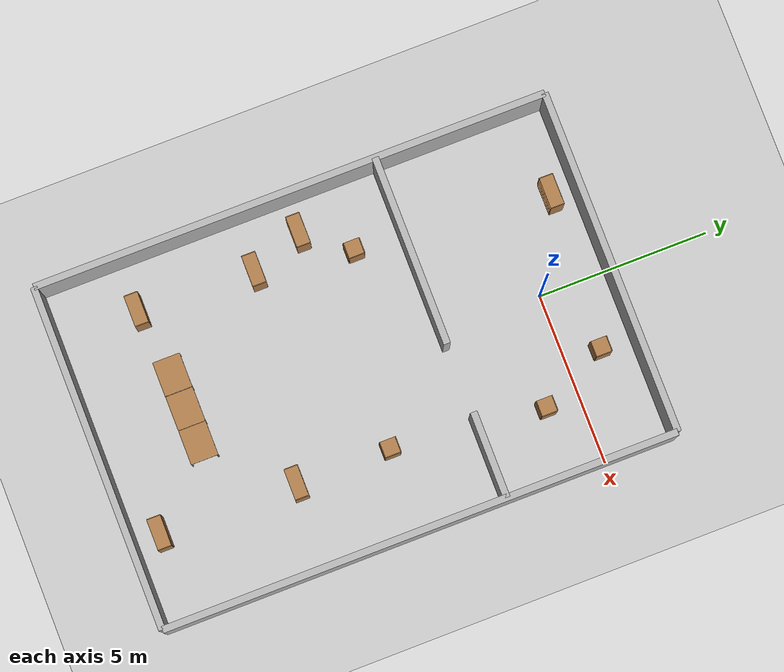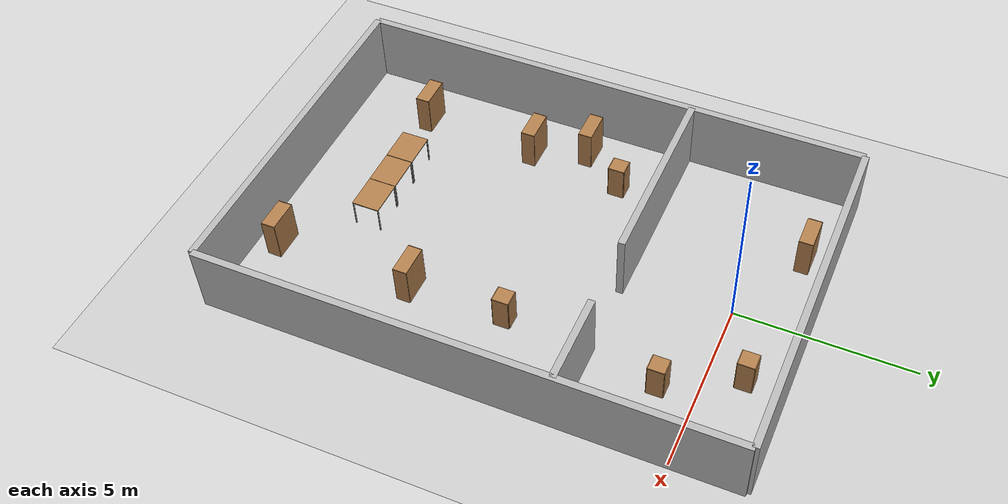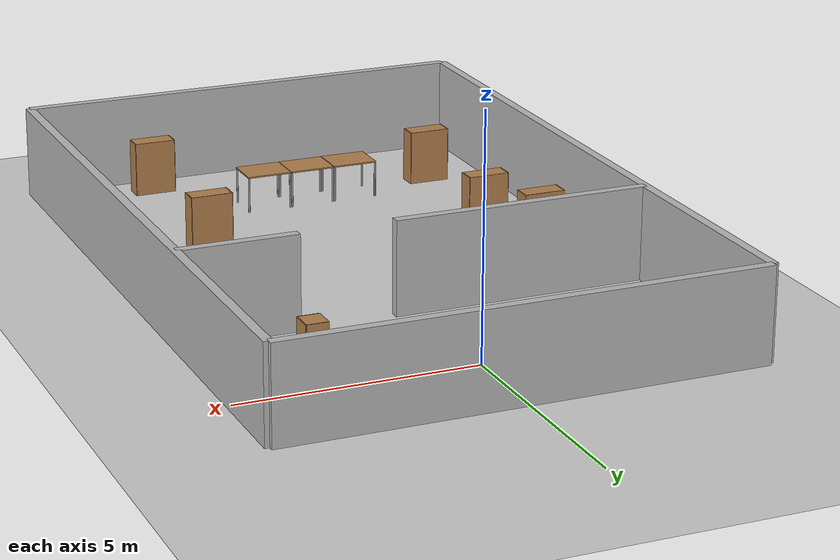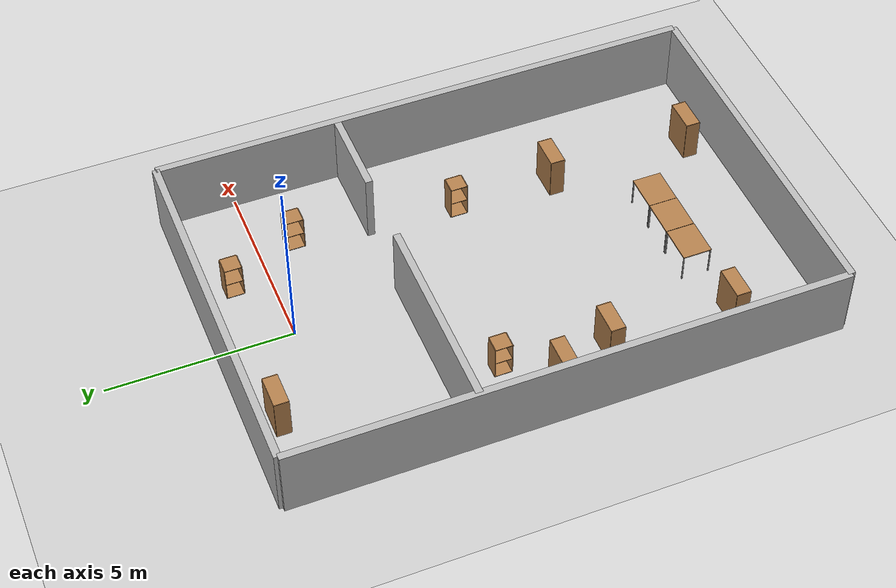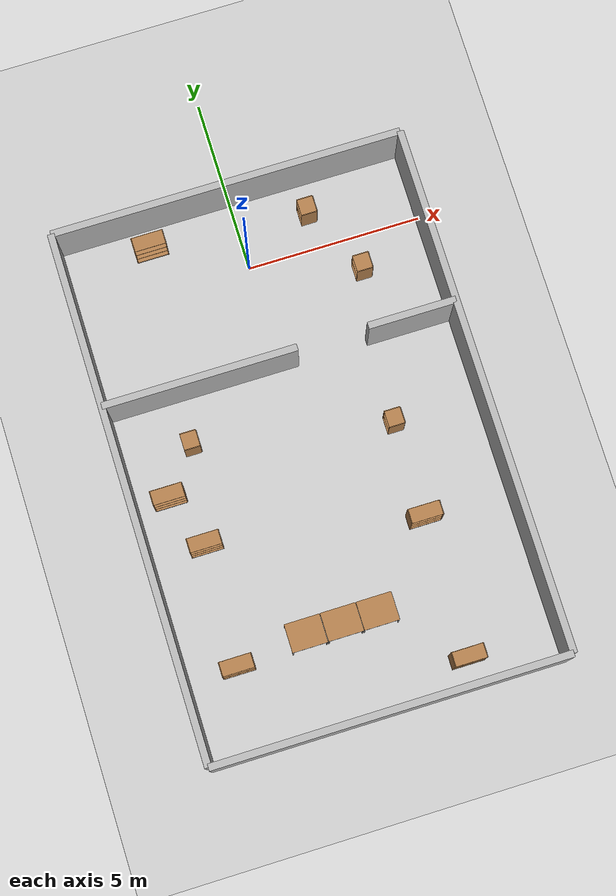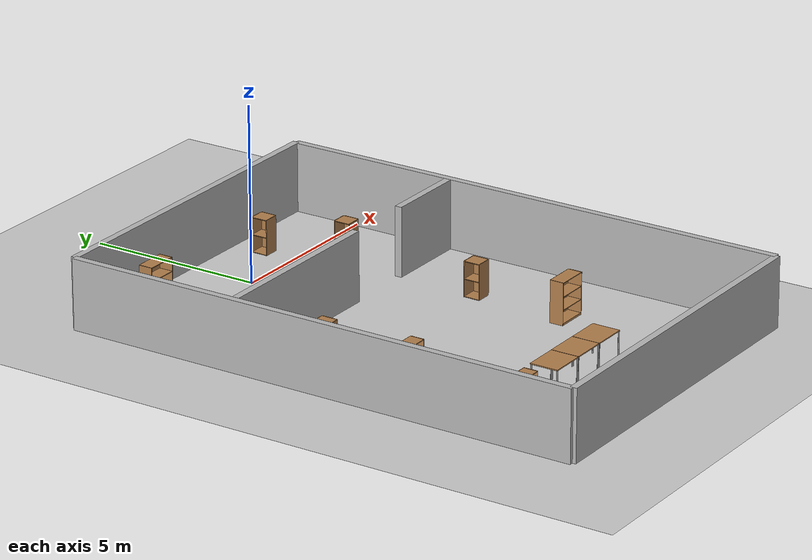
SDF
<sdf version="1.6">
 <world name="default">
  <physics name="default_physics" default="0" type="ode">
   <ode>
    <solver>
     <type>quick</type>
     <iters>20</iters>
     <sor>1</sor>
     <use_dynamic_moi_rescaling>0</use_dynamic_moi_rescaling>
    </solver>
    <constraints>
     <cfm>0</cfm>
     <erp>0.2</erp>
     <contact_max_correcting_vel>100</contact_max_correcting_vel>
     <contact_surface_layer>0</contact_surface_layer>
    </constraints>
   </ode>
   <real_time_update_rate>1000</real_time_update_rate>
   <max_step_size>0.001</max_step_size>
   <real_time_factor>1</real_time_factor>
   <max_contacts>20</max_contacts>
  </physics>
  <light name="sun" type="directional">
   <pose>0 0 10 0 -0 0</pose>
   <diffuse>0.8 0.8 0.8 1</diffuse>
   <specular>0.2 0.2 0.2 1</specular>
   <attenuation>
    <range>1000</range>
    <constant>0.9</constant>
    <linear>0.01</linear>
    <quadratic>0.001</quadratic>
   </attenuation>
   <direction>0.5 0.1 -0.9</direction>
  </light>
  <model name="ground_plane">
   <static>1</static>
   <link name="link">
    <collision name="collision">
     <geometry><plane><normal>0 0 1</normal><size>100 100</size></plane></geometry>
     <surface><friction><ode><mu>100</mu><mu2>50</mu2></ode></friction></surface>
    </collision>
    <visual name="visual">
     <cast_shadows>0</cast_shadows>
     <geometry><plane><normal>0 0 1</normal><size>100 100</size></plane></geometry>
     <material>
      <script><uri>file://media/materials/scripts/gazebo.material</uri><name>Gazebo/Grey</name></script>
     </material>
    </visual>
    <velocity_decay><linear>0</linear><angular>0</angular></velocity_decay>
   </link>
  </model>
  <model name="wall_1_model">
   <pose>0 -13 1 0 -0 0</pose>
   <static>1</static>
   <link name="wall_1_body">
    <inertial>
     <mass>1</mass>
     <inertia><ixx>1</ixx><ixy>0</ixy><ixz>0</ixz><iyy>1</iyy><iyz>0</iyz><izz>1</izz></inertia>
    </inertial>
    <collision name="collision"><geometry><box><size>10 0.2 2</size></box></geometry></collision>
    <visual name="visual"><geometry><box><size>10 0.2 2</size></box></geometry></visual>
    <velocity_decay><linear>0</linear><angular>0</angular></velocity_decay>
   </link>
  </model>
  <model name="wall_2_model">
   <pose>0 2 1 0 -0 0</pose>
   <static>1</static>
   <link name="wall_2_body">
    <inertial>
     <mass>1</mass>
     <inertia><ixx>1</ixx><ixy>0</ixy><ixz>0</ixz><iyy>1</iyy><iyz>0</iyz><izz>1</izz></inertia>
    </inertial>
    <collision name="collision"><geometry><box><size>10 0.2 2</size></box></geometry></collision>
    <visual name="visual"><geometry><box><size>10 0.2 2</size></box></geometry></visual>
    <velocity_decay><linear>0</linear><angular>0</angular></velocity_decay>
   </link>
  </model>
  <model name="wall_3_model">
   <pose>-5 -5.5 1 0 -0 0</pose>
   <static>1</static>
   <link name="wall_3_body">
    <inertial>
     <mass>1</mass>
     <inertia><ixx>1</ixx><ixy>0</ixy><ixz>0</ixz><iyy>1</iyy><iyz>0</iyz><izz>1</izz></inertia>
    </inertial>
    <collision name="collision"><geometry><box><size>0.2 15 2</size></box></geometry></collision>
    <visual name="visual"><geometry><box><size>0.2 15 2</size></box></geometry></visual>
    <velocity_decay><linear>0</linear><angular>0</angular></velocity_decay>
   </link>
  </model>
  <model name="wall_4_model">
   <pose>5 -5.5 1 0 -0 0</pose>
   <static>1</static>
   <link name="wall_4_body">
    <inertial>
     <mass>1</mass>
     <inertia><ixx>1</ixx><ixy>0</ixy><ixz>0</ixz><iyy>1</iyy><iyz>0</iyz><izz>1</izz></inertia>
    </inertial>
    <collision name="collision"><geometry><box><size>0.2 15 2</size></box></geometry></collision>
    <visual name="visual"><geometry><box><size>0.2 15 2</size></box></geometry></visual>
    <velocity_decay><linear>0</linear><angular>0</angular></velocity_decay>
   </link>
  </model>
  <model name="wall_5_model">
   <pose>-2.25 -3 1 0 -0 0</pose>
   <static>1</static>
   <link name="wall_5_body">
    <inertial>
     <mass>1</mass>
     <inertia><ixx>1</ixx><ixy>0</ixy><ixz>0</ixz><iyy>1</iyy><iyz>0</iyz><izz>1</izz></inertia>
    </inertial>
    <collision name="collision"><geometry><box><size>5.5 0.2 2</size></box></geometry></collision>
    <visual name="visual"><geometry><box><size>5.5 0.2 2</size></box></geometry></visual>
    <velocity_decay><linear>0</linear><angular>0</angular></velocity_decay>
   </link>
  </model>
  <model name="wall_6_model">
   <pose>3.75 -3 1 0 -0 0</pose>
   <static>1</static>
   <link name="wall_6_body">
    <inertial>
     <mass>1</mass>
     <inertia><ixx>1</ixx><ixy>0</ixy><ixz>0</ixz><iyy>1</iyy><iyz>0</iyz><izz>1</izz></inertia>
    </inertial>
    <collision name="collision"><geometry><box><size>2.5 0.2 2</size></box></geometry></collision>
    <visual name="visual"><geometry><box><size>2.5 0.2 2</size></box></geometry></visual>
    <velocity_decay><linear>0</linear><angular>0</angular></velocity_decay>
   </link>
  </model>
  <scene><ambient>0.2 0.2 0.2 1</ambient><background>0.7 0.7 0.7 1</background><shadows>1</shadows></scene>
  <model name="cabinet">
   <static>0</static>
   <link name="cabinet_bottom_plate">
    <inertial>
     <pose>0 0 -1 0 -0 0</pose>
     <inertia><ixx>2.05</ixx><ixy>0</ixy><ixz>0</ixz><iyy>2.05</iyy><iyz>0</iyz><izz>2.05</izz></inertia>
     <mass>25</mass>
    </inertial>
    <collision name="cabinet_bottom_plate_geom">
     <pose>0 0 0.01 0 -0 0</pose>
     <geometry><box><size>0.45 0.45 0.02</size></box></geometry>
    </collision>
    <visual name="cabinet_bottom_plate_geom_visual">
     <pose>0 0 0.01 0 -0 0</pose>
     <geometry><box><size>0.45 0.45 0.02</size></box></geometry>
     <material>
      <script><uri>file://media/materials/scripts/gazebo.material</uri><name>Gazebo/Wood</name></script>
     </material>
    </visual>
    <collision name="cabinet_bottom_plate_geom_cabinet_back_plate">
     <pose>0.235 0 0.51 0 -0 0</pose>
     <geometry><box><size>0.02 0.45 1.02</size></box></geometry>
    </collision>
    <visual name="cabinet_bottom_plate_geom_cabinet_back_plate_visual">
     <pose>0.235 0 0.51 0 -0 0</pose>
     <geometry><box><size>0.02 0.45 1.02</size></box></geometry>
     <material>
      <script><uri>file://media/materials/scripts/gazebo.material</uri><name>Gazebo/Wood</name></script>
     </material>
    </visual>
    <collision name="cabinet_bottom_plate_geom_cabinet_left_plate">
     <pose>0 0.235 0.51 0 -0 0</pose>
     <geometry><box><size>0.45 0.02 1.02</size></box></geometry>
    </collision>
    <visual name="cabinet_bottom_plate_geom_cabinet_left_plate_visual">
     <pose>0 0.235 0.51 0 -0 0</pose>
     <geometry><box><size>0.45 0.02 1.02</size></box></geometry>
     <material>
      <script><uri>file://media/materials/scripts/gazebo.material</uri><name>Gazebo/Wood</name></script>
     </material>
    </visual>
    <collision name="cabinet_bottom_plate_geom_cabinet_middle_plate">
     <pose>0 0 0.51 0 -0 0</pose>
     <geometry><box><size>0.45 0.45 0.02</size></box></geometry>
    </collision>
    <visual name="cabinet_bottom_plate_geom_cabinet_middle_plate_visual">
     <pose>0 0 0.51 0 -0 0</pose>
     <geometry><box><size>0.45 0.45 0.02</size></box></geometry>
     <material>
      <script><uri>file://media/materials/scripts/gazebo.material</uri><name>Gazebo/Wood</name></script>
     </material>
    </visual>
    <collision name="cabinet_bottom_plate_geom_cabinet_right_plate">
     <pose>0 -0.235 0.51 0 -0 0</pose>
     <geometry><box><size>0.45 0.02 1.02</size></box></geometry>
    </collision>
    <visual name="cabinet_bottom_plate_geom_cabinet_right_plate_visual">
     <pose>0 -0.235 0.51 0 -0 0</pose>
     <geometry><box><size>0.45 0.02 1.02</size></box></geometry>
     <material>
      <script><uri>file://media/materials/scripts/gazebo.material</uri><name>Gazebo/Wood</name></script>
     </material>
    </visual>
    <collision name="cabinet_bottom_plate_geom_cabinet_top_plate">
     <pose>0 0 1.01 0 -0 0</pose>
     <geometry><box><size>0.45 0.45 0.02</size></box></geometry>
    </collision>
    <visual name="cabinet_bottom_plate_geom_cabinet_top_plate_visual">
     <pose>0 0 1.01 0 -0 0</pose>
     <geometry><box><size>0.45 0.45 0.02</size></box></geometry>
     <material>
      <script><uri>file://media/materials/scripts/gazebo.material</uri><name>Gazebo/Wood</name></script>
     </material>
    </visual>
    <velocity_decay><linear>0</linear><angular>0</angular></velocity_decay>
   </link>
   <pose>1.99913 1.00004 0 0 -1e-06 0.000267</pose>
  </model>
  <model name="cabinet_0">
   <static>0</static>
   <link name="cabinet_bottom_plate">
    <inertial>
     <pose>0 0 -1 0 -0 0</pose>
     <inertia><ixx>2.05</ixx><ixy>0</ixy><ixz>0</ixz><iyy>2.05</iyy><iyz>0</iyz><izz>2.05</izz></inertia>
     <mass>25</mass>
    </inertial>
    <collision name="cabinet_bottom_plate_geom">
     <pose>0 0 0.01 0 -0 0</pose>
     <geometry><box><size>0.45 0.45 0.02</size></box></geometry>
    </collision>
    <visual name="cabinet_bottom_plate_geom_visual">
     <pose>0 0 0.01 0 -0 0</pose>
     <geometry><box><size>0.45 0.45 0.02</size></box></geometry>
     <material>
      <script><uri>file://media/materials/scripts/gazebo.material</uri><name>Gazebo/Wood</name></script>
     </material>
    </visual>
    <collision name="cabinet_bottom_plate_geom_cabinet_back_plate">
     <pose>0.235 0 0.51 0 -0 0</pose>
     <geometry><box><size>0.02 0.45 1.02</size></box></geometry>
    </collision>
    <visual name="cabinet_bottom_plate_geom_cabinet_back_plate_visual">
     <pose>0.235 0 0.51 0 -0 0</pose>
     <geometry><box><size>0.02 0.45 1.02</size></box></geometry>
     <material>
      <script><uri>file://media/materials/scripts/gazebo.material</uri><name>Gazebo/Wood</name></script>
     </material>
    </visual>
    <collision name="cabinet_bottom_plate_geom_cabinet_left_plate">
     <pose>0 0.235 0.51 0 -0 0</pose>
     <geometry><box><size>0.45 0.02 1.02</size></box></geometry>
    </collision>
    <visual name="cabinet_bottom_plate_geom_cabinet_left_plate_visual">
     <pose>0 0.235 0.51 0 -0 0</pose>
     <geometry><box><size>0.45 0.02 1.02</size></box></geometry>
     <material>
      <script><uri>file://media/materials/scripts/gazebo.material</uri><name>Gazebo/Wood</name></script>
     </material>
    </visual>
    <collision name="cabinet_bottom_plate_geom_cabinet_middle_plate">
     <pose>0 0 0.51 0 -0 0</pose>
     <geometry><box><size>0.45 0.45 0.02</size></box></geometry>
    </collision>
    <visual name="cabinet_bottom_plate_geom_cabinet_middle_plate_visual">
     <pose>0 0 0.51 0 -0 0</pose>
     <geometry><box><size>0.45 0.45 0.02</size></box></geometry>
     <material>
      <script><uri>file://media/materials/scripts/gazebo.material</uri><name>Gazebo/Wood</name></script>
     </material>
    </visual>
    <collision name="cabinet_bottom_plate_geom_cabinet_right_plate">
     <pose>0 -0.235 0.51 0 -0 0</pose>
     <geometry><box><size>0.45 0.02 1.02</size></box></geometry>
    </collision>
    <visual name="cabinet_bottom_plate_geom_cabinet_right_plate_visual">
     <pose>0 -0.235 0.51 0 -0 0</pose>
     <geometry><box><size>0.45 0.02 1.02</size></box></geometry>
     <material>
      <script><uri>file://media/materials/scripts/gazebo.material</uri><name>Gazebo/Wood</name></script>
     </material>
    </visual>
    <collision name="cabinet_bottom_plate_geom_cabinet_top_plate">
     <pose>0 0 1.01 0 -0 0</pose>
     <geometry><box><size>0.45 0.45 0.02</size></box></geometry>
    </collision>
    <visual name="cabinet_bottom_plate_geom_cabinet_top_plate_visual">
     <pose>0 0 1.01 0 -0 0</pose>
     <geometry><box><size>0.45 0.45 0.02</size></box></geometry>
     <material>
      <script><uri>file://media/materials/scripts/gazebo.material</uri><name>Gazebo/Wood</name></script>
     </material>
    </visual>
    <velocity_decay><linear>0</linear><angular>0</angular></velocity_decay>
   </link>
   <pose>2.51486 -5.43946 0 0 -1e-06 0.000267</pose>
  </model>
  <model name="bookshelf_1">
   <static>0</static>
   <link name="link">
    <inertial>
     <mass>1</mass>
     <inertia><ixx>1</ixx><ixy>0</ixy><ixz>0</ixz><iyy>1</iyy><iyz>0</iyz><izz>1</izz></inertia>
    </inertial>
    <collision name="back">
     <pose>0 0.005 0.6 0 -0 0</pose>
     <geometry><box><size>0.9 0.01 1.2</size></box></geometry>
    </collision>
    <visual name="visual1">
     <pose>0 0.005 0.6 0 -0 0</pose>
     <geometry><box><size>0.9 0.01 1.2</size></box></geometry>
     <material>
      <script><uri>file://media/materials/scripts/gazebo.material</uri><name>Gazebo/Wood</name></script>
     </material>
    </visual>
    <collision name="left_side">
     <pose>0.45 -0.195 0.6 0 -0 0</pose>
     <geometry><box><size>0.02 0.4 1.2</size></box></geometry>
    </collision>
    <visual name="visual2">
     <pose>0.45 -0.195 0.6 0 -0 0</pose>
     <geometry><box><size>0.02 0.4 1.2</size></box></geometry>
     <material>
      <script><uri>file://media/materials/scripts/gazebo.material</uri><name>Gazebo/Wood</name></script>
     </material>
    </visual>
    <collision name="right_side">
     <pose>-0.45 -0.195 0.6 0 -0 0</pose>
     <geometry><box><size>0.02 0.4 1.2</size></box></geometry>
    </collision>
    <visual name="visual3">
     <pose>-0.45 -0.195 0.6 0 -0 0</pose>
     <geometry><box><size>0.02 0.4 1.2</size></box></geometry>
     <material>
      <script><uri>file://media/materials/scripts/gazebo.material</uri><name>Gazebo/Wood</name></script>
     </material>
    </visual>
    <collision name="bottom">
     <pose>0 -0.195 0.03 0 -0 0</pose>
     <geometry><box><size>0.88 0.4 0.06</size></box></geometry>
    </collision>
    <visual name="visual4">
     <pose>0 -0.195 0.03 0 -0 0</pose>
     <geometry><box><size>0.88 0.4 0.06</size></box></geometry>
     <material>
      <script><uri>file://media/materials/scripts/gazebo.material</uri><name>Gazebo/Wood</name></script>
     </material>
    </visual>
    <collision name="top">
     <pose>0 -0.195 1.19 0 -0 0</pose>
     <geometry><box><size>0.88 0.4 0.02</size></box></geometry>
    </collision>
    <visual name="visual5">
     <pose>0 -0.195 1.19 0 -0 0</pose>
     <geometry><box><size>0.88 0.4 0.02</size></box></geometry>
     <material>
      <script><uri>file://media/materials/scripts/gazebo.material</uri><name>Gazebo/Wood</name></script>
     </material>
    </visual>
    <collision name="low_shelf">
     <pose>0 -0.195 0.43 0 -0 0</pose>
     <geometry><box><size>0.88 0.4 0.02</size></box></geometry>
    </collision>
    <visual name="visual6">
     <pose>0 -0.195 0.43 0 -0 0</pose>
     <geometry><box><size>0.88 0.4 0.02</size></box></geometry>
     <material>
      <script><uri>file://media/materials/scripts/gazebo.material</uri><name>Gazebo/Wood</name></script>
     </material>
    </visual>
    <collision name="high_shelf">
     <pose>0 -0.195 0.8 0 -0 0</pose>
     <geometry><box><size>0.88 0.4 0.02</size></box></geometry>
    </collision>
    <visual name="visual7">
     <pose>0 -0.195 0.8 0 -0 0</pose>
     <geometry><box><size>0.88 0.4 0.02</size></box></geometry>
     <material>
      <script><uri>file://media/materials/scripts/gazebo.material</uri><name>Gazebo/Wood</name></script>
     </material>
    </visual>
    <velocity_decay><linear>0</linear><angular>0</angular></velocity_decay>
   </link>
   <pose>-2.49816 1.46785 0 -3.4e-05 0 0</pose>
  </model>
  <model name="cabinet_1">
   <static>0</static>
   <link name="cabinet_bottom_plate">
    <inertial>
     <pose>0 0 -1 0 -0 0</pose>
     <inertia><ixx>2.05</ixx><ixy>0</ixy><ixz>0</ixz><iyy>2.05</iyy><iyz>0</iyz><izz>2.05</izz></inertia>
     <mass>25</mass>
    </inertial>
    <collision name="cabinet_bottom_plate_geom">
     <pose>0 0 0.01 0 -0 0</pose>
     <geometry><box><size>0.45 0.45 0.02</size></box></geometry>
    </collision>
    <visual name="cabinet_bottom_plate_geom_visual">
     <pose>0 0 0.01 0 -0 0</pose>
     <geometry><box><size>0.45 0.45 0.02</size></box></geometry>
     <material>
      <script><uri>file://media/materials/scripts/gazebo.material</uri><name>Gazebo/Wood</name></script>
     </material>
    </visual>
    <collision name="cabinet_bottom_plate_geom_cabinet_back_plate">
     <pose>0.235 0 0.51 0 -0 0</pose>
     <geometry><box><size>0.02 0.45 1.02</size></box></geometry>
    </collision>
    <visual name="cabinet_bottom_plate_geom_cabinet_back_plate_visual">
     <pose>0.235 0 0.51 0 -0 0</pose>
     <geometry><box><size>0.02 0.45 1.02</size></box></geometry>
     <material>
      <script><uri>file://media/materials/scripts/gazebo.material</uri><name>Gazebo/Wood</name></script>
     </material>
    </visual>
    <collision name="cabinet_bottom_plate_geom_cabinet_left_plate">
     <pose>0 0.235 0.51 0 -0 0</pose>
     <geometry><box><size>0.45 0.02 1.02</size></box></geometry>
    </collision>
    <visual name="cabinet_bottom_plate_geom_cabinet_left_plate_visual">
     <pose>0 0.235 0.51 0 -0 0</pose>
     <geometry><box><size>0.45 0.02 1.02</size></box></geometry>
     <material>
      <script><uri>file://media/materials/scripts/gazebo.material</uri><name>Gazebo/Wood</name></script>
     </material>
    </visual>
    <collision name="cabinet_bottom_plate_geom_cabinet_middle_plate">
     <pose>0 0 0.51 0 -0 0</pose>
     <geometry><box><size>0.45 0.45 0.02</size></box></geometry>
    </collision>
    <visual name="cabinet_bottom_plate_geom_cabinet_middle_plate_visual">
     <pose>0 0 0.51 0 -0 0</pose>
     <geometry><box><size>0.45 0.45 0.02</size></box></geometry>
     <material>
      <script><uri>file://media/materials/scripts/gazebo.material</uri><name>Gazebo/Wood</name></script>
     </material>
    </visual>
    <collision name="cabinet_bottom_plate_geom_cabinet_right_plate">
     <pose>0 -0.235 0.51 0 -0 0</pose>
     <geometry><box><size>0.45 0.02 1.02</size></box></geometry>
    </collision>
    <visual name="cabinet_bottom_plate_geom_cabinet_right_plate_visual">
     <pose>0 -0.235 0.51 0 -0 0</pose>
     <geometry><box><size>0.45 0.02 1.02</size></box></geometry>
     <material>
      <script><uri>file://media/materials/scripts/gazebo.material</uri><name>Gazebo/Wood</name></script>
     </material>
    </visual>
    <collision name="cabinet_bottom_plate_geom_cabinet_top_plate">
     <pose>0 0 1.01 0 -0 0</pose>
     <geometry><box><size>0.45 0.45 0.02</size></box></geometry>
    </collision>
    <visual name="cabinet_bottom_plate_geom_cabinet_top_plate_visual">
     <pose>0 0 1.01 0 -0 0</pose>
     <geometry><box><size>0.45 0.45 0.02</size></box></geometry>
     <material>
      <script><uri>file://media/materials/scripts/gazebo.material</uri><name>Gazebo/Wood</name></script>
     </material>
    </visual>
    <velocity_decay><linear>0</linear><angular>0</angular></velocity_decay>
   </link>
   <pose>-3.00087 -4.40002 0 0 -1e-06 0.000267</pose>
  </model>
  <model name="bookshelf_2">
   <static>0</static>
   <link name="link">
    <inertial>
     <mass>1</mass>
     <inertia><ixx>1</ixx><ixy>0</ixy><ixz>0</ixz><iyy>1</iyy><iyz>0</iyz><izz>1</izz></inertia>
    </inertial>
    <collision name="back">
     <pose>0 0.005 0.6 0 -0 0</pose>
     <geometry><box><size>0.9 0.01 1.2</size></box></geometry>
    </collision>
    <visual name="visual1">
     <pose>0 0.005 0.6 0 -0 0</pose>
     <geometry><box><size>0.9 0.01 1.2</size></box></geometry>
     <material>
      <script><uri>file://media/materials/scripts/gazebo.material</uri><name>Gazebo/Wood</name></script>
     </material>
    </visual>
    <collision name="left_side">
     <pose>0.45 -0.195 0.6 0 -0 0</pose>
     <geometry><box><size>0.02 0.4 1.2</size></box></geometry>
    </collision>
    <visual name="visual2">
     <pose>0.45 -0.195 0.6 0 -0 0</pose>
     <geometry><box><size>0.02 0.4 1.2</size></box></geometry>
     <material>
      <script><uri>file://media/materials/scripts/gazebo.material</uri><name>Gazebo/Wood</name></script>
     </material>
    </visual>
    <collision name="right_side">
     <pose>-0.45 -0.195 0.6 0 -0 0</pose>
     <geometry><box><size>0.02 0.4 1.2</size></box></geometry>
    </collision>
    <visual name="visual3">
     <pose>-0.45 -0.195 0.6 0 -0 0</pose>
     <geometry><box><size>0.02 0.4 1.2</size></box></geometry>
     <material>
      <script><uri>file://media/materials/scripts/gazebo.material</uri><name>Gazebo/Wood</name></script>
     </material>
    </visual>
    <collision name="bottom">
     <pose>0 -0.195 0.03 0 -0 0</pose>
     <geometry><box><size>0.88 0.4 0.06</size></box></geometry>
    </collision>
    <visual name="visual4">
     <pose>0 -0.195 0.03 0 -0 0</pose>
     <geometry><box><size>0.88 0.4 0.06</size></box></geometry>
     <material>
      <script><uri>file://media/materials/scripts/gazebo.material</uri><name>Gazebo/Wood</name></script>
     </material>
    </visual>
    <collision name="top">
     <pose>0 -0.195 1.19 0 -0 0</pose>
     <geometry><box><size>0.88 0.4 0.02</size></box></geometry>
    </collision>
    <visual name="visual5">
     <pose>0 -0.195 1.19 0 -0 0</pose>
     <geometry><box><size>0.88 0.4 0.02</size></box></geometry>
     <material>
      <script><uri>file://media/materials/scripts/gazebo.material</uri><name>Gazebo/Wood</name></script>
     </material>
    </visual>
    <collision name="low_shelf">
     <pose>0 -0.195 0.43 0 -0 0</pose>
     <geometry><box><size>0.88 0.4 0.02</size></box></geometry>
    </collision>
    <visual name="visual6">
     <pose>0 -0.195 0.43 0 -0 0</pose>
     <geometry><box><size>0.88 0.4 0.02</size></box></geometry>
     <material>
      <script><uri>file://media/materials/scripts/gazebo.material</uri><name>Gazebo/Wood</name></script>
     </material>
    </visual>
    <collision name="high_shelf">
     <pose>0 -0.195 0.8 0 -0 0</pose>
     <geometry><box><size>0.88 0.4 0.02</size></box></geometry>
    </collision>
    <visual name="visual7">
     <pose>0 -0.195 0.8 0 -0 0</pose>
     <geometry><box><size>0.88 0.4 0.02</size></box></geometry>
     <material>
      <script><uri>file://media/materials/scripts/gazebo.material</uri><name>Gazebo/Wood</name></script>
     </material>
    </visual>
    <velocity_decay><linear>0</linear><angular>0</angular></velocity_decay>
   </link>
   <pose>-3.41849 -7 0 -2.2e-05 0 0</pose>
  </model>
  <model name="cabinet_3">
   <static>0</static>
   <link name="cabinet_bottom_plate">
    <inertial>
     <pose>0 0 -1 0 -0 0</pose>
     <inertia><ixx>2.05</ixx><ixy>0</ixy><ixz>0</ixz><iyy>2.05</iyy><iyz>0</iyz><izz>2.05</izz></inertia>
     <mass>25</mass>
    </inertial>
    <collision name="cabinet_bottom_plate_geom">
     <pose>0 0 0.01 0 -0 0</pose>
     <geometry><box><size>0.45 0.45 0.02</size></box></geometry>
    </collision>
    <visual name="cabinet_bottom_plate_geom_visual">
     <pose>0 0 0.01 0 -0 0</pose>
     <geometry><box><size>0.45 0.45 0.02</size></box></geometry>
     <material>
      <script><uri>file://media/materials/scripts/gazebo.material</uri><name>Gazebo/Wood</name></script>
     </material>
    </visual>
    <collision name="cabinet_bottom_plate_geom_cabinet_back_plate">
     <pose>0.235 0 0.51 0 -0 0</pose>
     <geometry><box><size>0.02 0.45 1.02</size></box></geometry>
    </collision>
    <visual name="cabinet_bottom_plate_geom_cabinet_back_plate_visual">
     <pose>0.235 0 0.51 0 -0 0</pose>
     <geometry><box><size>0.02 0.45 1.02</size></box></geometry>
     <material>
      <script><uri>file://media/materials/scripts/gazebo.material</uri><name>Gazebo/Wood</name></script>
     </material>
    </visual>
    <collision name="cabinet_bottom_plate_geom_cabinet_left_plate">
     <pose>0 0.235 0.51 0 -0 0</pose>
     <geometry><box><size>0.45 0.02 1.02</size></box></geometry>
    </collision>
    <visual name="cabinet_bottom_plate_geom_cabinet_left_plate_visual">
     <pose>0 0.235 0.51 0 -0 0</pose>
     <geometry><box><size>0.45 0.02 1.02</size></box></geometry>
     <material>
      <script><uri>file://media/materials/scripts/gazebo.material</uri><name>Gazebo/Wood</name></script>
     </material>
    </visual>
    <collision name="cabinet_bottom_plate_geom_cabinet_middle_plate">
     <pose>0 0 0.51 0 -0 0</pose>
     <geometry><box><size>0.45 0.45 0.02</size></box></geometry>
    </collision>
    <visual name="cabinet_bottom_plate_geom_cabinet_middle_plate_visual">
     <pose>0 0 0.51 0 -0 0</pose>
     <geometry><box><size>0.45 0.45 0.02</size></box></geometry>
     <material>
      <script><uri>file://media/materials/scripts/gazebo.material</uri><name>Gazebo/Wood</name></script>
     </material>
    </visual>
    <collision name="cabinet_bottom_plate_geom_cabinet_right_plate">
     <pose>0 -0.235 0.51 0 -0 0</pose>
     <geometry><box><size>0.45 0.02 1.02</size></box></geometry>
    </collision>
    <visual name="cabinet_bottom_plate_geom_cabinet_right_plate_visual">
     <pose>0 -0.235 0.51 0 -0 0</pose>
     <geometry><box><size>0.45 0.02 1.02</size></box></geometry>
     <material>
      <script><uri>file://media/materials/scripts/gazebo.material</uri><name>Gazebo/Wood</name></script>
     </material>
    </visual>
    <collision name="cabinet_bottom_plate_geom_cabinet_top_plate">
     <pose>0 0 1.01 0 -0 0</pose>
     <geometry><box><size>0.45 0.45 0.02</size></box></geometry>
    </collision>
    <visual name="cabinet_bottom_plate_geom_cabinet_top_plate_visual">
     <pose>0 0 1.01 0 -0 0</pose>
     <geometry><box><size>0.45 0.45 0.02</size></box></geometry>
     <material>
      <script><uri>file://media/materials/scripts/gazebo.material</uri><name>Gazebo/Wood</name></script>
     </material>
    </visual>
    <velocity_decay><linear>0</linear><angular>0</angular></velocity_decay>
   </link>
   <pose>2.99913 -0.99996 0 0 -1e-06 0.000267</pose>
  </model>
  <model name="bookshelf_3">
   <static>0</static>
   <link name="link">
    <inertial>
     <mass>1</mass>
     <inertia><ixx>1</ixx><ixy>0</ixy><ixz>0</ixz><iyy>1</iyy><iyz>0</iyz><izz>1</izz></inertia>
    </inertial>
    <collision name="back">
     <pose>0 0.005 0.6 0 -0 0</pose>
     <geometry><box><size>0.9 0.01 1.2</size></box></geometry>
    </collision>
    <visual name="visual1">
     <pose>0 0.005 0.6 0 -0 0</pose>
     <geometry><box><size>0.9 0.01 1.2</size></box></geometry>
     <material>
      <script><uri>file://media/materials/scripts/gazebo.material</uri><name>Gazebo/Wood</name></script>
     </material>
    </visual>
    <collision name="left_side">
     <pose>0.45 -0.195 0.6 0 -0 0</pose>
     <geometry><box><size>0.02 0.4 1.2</size></box></geometry>
    </collision>
    <visual name="visual2">
     <pose>0.45 -0.195 0.6 0 -0 0</pose>
     <geometry><box><size>0.02 0.4 1.2</size></box></geometry>
     <material>
      <script><uri>file://media/materials/scripts/gazebo.material</uri><name>Gazebo/Wood</name></script>
     </material>
    </visual>
    <collision name="right_side">
     <pose>-0.45 -0.195 0.6 0 -0 0</pose>
     <geometry><box><size>0.02 0.4 1.2</size></box></geometry>
    </collision>
    <visual name="visual3">
     <pose>-0.45 -0.195 0.6 0 -0 0</pose>
     <geometry><box><size>0.02 0.4 1.2</size></box></geometry>
     <material>
      <script><uri>file://media/materials/scripts/gazebo.material</uri><name>Gazebo/Wood</name></script>
     </material>
    </visual>
    <collision name="bottom">
     <pose>0 -0.195 0.03 0 -0 0</pose>
     <geometry><box><size>0.88 0.4 0.06</size></box></geometry>
    </collision>
    <visual name="visual4">
     <pose>0 -0.195 0.03 0 -0 0</pose>
     <geometry><box><size>0.88 0.4 0.06</size></box></geometry>
     <material>
      <script><uri>file://media/materials/scripts/gazebo.material</uri><name>Gazebo/Wood</name></script>
     </material>
    </visual>
    <collision name="top">
     <pose>0 -0.195 1.19 0 -0 0</pose>
     <geometry><box><size>0.88 0.4 0.02</size></box></geometry>
    </collision>
    <visual name="visual5">
     <pose>0 -0.195 1.19 0 -0 0</pose>
     <geometry><box><size>0.88 0.4 0.02</size></box></geometry>
     <material>
      <script><uri>file://media/materials/scripts/gazebo.material</uri><name>Gazebo/Wood</name></script>
     </material>
    </visual>
    <collision name="low_shelf">
     <pose>0 -0.195 0.43 0 -0 0</pose>
     <geometry><box><size>0.88 0.4 0.02</size></box></geometry>
    </collision>
    <visual name="visual6">
     <pose>0 -0.195 0.43 0 -0 0</pose>
     <geometry><box><size>0.88 0.4 0.02</size></box></geometry>
     <material>
      <script><uri>file://media/materials/scripts/gazebo.material</uri><name>Gazebo/Wood</name></script>
     </material>
    </visual>
    <collision name="high_shelf">
     <pose>0 -0.195 0.8 0 -0 0</pose>
     <geometry><box><size>0.88 0.4 0.02</size></box></geometry>
    </collision>
    <visual name="visual7">
     <pose>0 -0.195 0.8 0 -0 0</pose>
     <geometry><box><size>0.88 0.4 0.02</size></box></geometry>
     <material>
      <script><uri>file://media/materials/scripts/gazebo.material</uri><name>Gazebo/Wood</name></script>
     </material>
    </visual>
    <velocity_decay><linear>0</linear><angular>0</angular></velocity_decay>
   </link>
   <pose>2.45055 -12 0 -4e-05 0 0</pose>
  </model>
  <model name="bookshelf_4">
   <static>0</static>
   <link name="link">
    <inertial>
     <mass>1</mass>
     <inertia><ixx>1</ixx><ixy>0</ixy><ixz>0</ixz><iyy>1</iyy><iyz>0</iyz><izz>1</izz></inertia>
    </inertial>
    <collision name="back">
     <pose>0 0.005 0.6 0 -0 0</pose>
     <geometry><box><size>0.9 0.01 1.2</size></box></geometry>
    </collision>
    <visual name="visual1">
     <pose>0 0.005 0.6 0 -0 0</pose>
     <geometry><box><size>0.9 0.01 1.2</size></box></geometry>
     <material>
      <script><uri>file://media/materials/scripts/gazebo.material</uri><name>Gazebo/Wood</name></script>
     </material>
    </visual>
    <collision name="left_side">
     <pose>0.45 -0.195 0.6 0 -0 0</pose>
     <geometry><box><size>0.02 0.4 1.2</size></box></geometry>
    </collision>
    <visual name="visual2">
     <pose>0.45 -0.195 0.6 0 -0 0</pose>
     <geometry><box><size>0.02 0.4 1.2</size></box></geometry>
     <material>
      <script><uri>file://media/materials/scripts/gazebo.material</uri><name>Gazebo/Wood</name></script>
     </material>
    </visual>
    <collision name="right_side">
     <pose>-0.45 -0.195 0.6 0 -0 0</pose>
     <geometry><box><size>0.02 0.4 1.2</size></box></geometry>
    </collision>
    <visual name="visual3">
     <pose>-0.45 -0.195 0.6 0 -0 0</pose>
     <geometry><box><size>0.02 0.4 1.2</size></box></geometry>
     <material>
      <script><uri>file://media/materials/scripts/gazebo.material</uri><name>Gazebo/Wood</name></script>
     </material>
    </visual>
    <collision name="bottom">
     <pose>0 -0.195 0.03 0 -0 0</pose>
     <geometry><box><size>0.88 0.4 0.06</size></box></geometry>
    </collision>
    <visual name="visual4">
     <pose>0 -0.195 0.03 0 -0 0</pose>
     <geometry><box><size>0.88 0.4 0.06</size></box></geometry>
     <material>
      <script><uri>file://media/materials/scripts/gazebo.material</uri><name>Gazebo/Wood</name></script>
     </material>
    </visual>
    <collision name="top">
     <pose>0 -0.195 1.19 0 -0 0</pose>
     <geometry><box><size>0.88 0.4 0.02</size></box></geometry>
    </collision>
    <visual name="visual5">
     <pose>0 -0.195 1.19 0 -0 0</pose>
     <geometry><box><size>0.88 0.4 0.02</size></box></geometry>
     <material>
      <script><uri>file://media/materials/scripts/gazebo.material</uri><name>Gazebo/Wood</name></script>
     </material>
    </visual>
    <collision name="low_shelf">
     <pose>0 -0.195 0.43 0 -0 0</pose>
     <geometry><box><size>0.88 0.4 0.02</size></box></geometry>
    </collision>
    <visual name="visual6">
     <pose>0 -0.195 0.43 0 -0 0</pose>
     <geometry><box><size>0.88 0.4 0.02</size></box></geometry>
     <material>
      <script><uri>file://media/materials/scripts/gazebo.material</uri><name>Gazebo/Wood</name></script>
     </material>
    </visual>
    <collision name="high_shelf">
     <pose>0 -0.195 0.8 0 -0 0</pose>
     <geometry><box><size>0.88 0.4 0.02</size></box></geometry>
    </collision>
    <visual name="visual7">
     <pose>0 -0.195 0.8 0 -0 0</pose>
     <geometry><box><size>0.88 0.4 0.02</size></box></geometry>
     <material>
      <script><uri>file://media/materials/scripts/gazebo.material</uri><name>Gazebo/Wood</name></script>
     </material>
    </visual>
    <velocity_decay><linear>0</linear><angular>0</angular></velocity_decay>
   </link>
   <pose>2.51316 -8 -1e-06 -3e-06 -3e-06 0</pose>
  </model>
  <model name="bookshelf_5">
   <static>0</static>
   <link name="link">
    <inertial>
     <mass>1</mass>
     <inertia><ixx>1</ixx><ixy>0</ixy><ixz>0</ixz><iyy>1</iyy><iyz>0</iyz><izz>1</izz></inertia>
    </inertial>
    <collision name="back">
     <pose>0 0.005 0.6 0 -0 0</pose>
     <geometry><box><size>0.9 0.01 1.2</size></box></geometry>
    </collision>
    <visual name="visual1">
     <pose>0 0.005 0.6 0 -0 0</pose>
     <geometry><box><size>0.9 0.01 1.2</size></box></geometry>
     <material>
      <script><uri>file://media/materials/scripts/gazebo.material</uri><name>Gazebo/Wood</name></script>
     </material>
    </visual>
    <collision name="left_side">
     <pose>0.45 -0.195 0.6 0 -0 0</pose>
     <geometry><box><size>0.02 0.4 1.2</size></box></geometry>
    </collision>
    <visual name="visual2">
     <pose>0.45 -0.195 0.6 0 -0 0</pose>
     <geometry><box><size>0.02 0.4 1.2</size></box></geometry>
     <material>
      <script><uri>file://media/materials/scripts/gazebo.material</uri><name>Gazebo/Wood</name></script>
     </material>
    </visual>
    <collision name="right_side">
     <pose>-0.45 -0.195 0.6 0 -0 0</pose>
     <geometry><box><size>0.02 0.4 1.2</size></box></geometry>
    </collision>
    <visual name="visual3">
     <pose>-0.45 -0.195 0.6 0 -0 0</pose>
     <geometry><box><size>0.02 0.4 1.2</size></box></geometry>
     <material>
      <script><uri>file://media/materials/scripts/gazebo.material</uri><name>Gazebo/Wood</name></script>
     </material>
    </visual>
    <collision name="bottom">
     <pose>0 -0.195 0.03 0 -0 0</pose>
     <geometry><box><size>0.88 0.4 0.06</size></box></geometry>
    </collision>
    <visual name="visual4">
     <pose>0 -0.195 0.03 0 -0 0</pose>
     <geometry><box><size>0.88 0.4 0.06</size></box></geometry>
     <material>
      <script><uri>file://media/materials/scripts/gazebo.material</uri><name>Gazebo/Wood</name></script>
     </material>
    </visual>
    <collision name="top">
     <pose>0 -0.195 1.19 0 -0 0</pose>
     <geometry><box><size>0.88 0.4 0.02</size></box></geometry>
    </collision>
    <visual name="visual5">
     <pose>0 -0.195 1.19 0 -0 0</pose>
     <geometry><box><size>0.88 0.4 0.02</size></box></geometry>
     <material>
      <script><uri>file://media/materials/scripts/gazebo.material</uri><name>Gazebo/Wood</name></script>
     </material>
    </visual>
    <collision name="low_shelf">
     <pose>0 -0.195 0.43 0 -0 0</pose>
     <geometry><box><size>0.88 0.4 0.02</size></box></geometry>
    </collision>
    <visual name="visual6">
     <pose>0 -0.195 0.43 0 -0 0</pose>
     <geometry><box><size>0.88 0.4 0.02</size></box></geometry>
     <material>
      <script><uri>file://media/materials/scripts/gazebo.material</uri><name>Gazebo/Wood</name></script>
     </material>
    </visual>
    <collision name="high_shelf">
     <pose>0 -0.195 0.8 0 -0 0</pose>
     <geometry><box><size>0.88 0.4 0.02</size></box></geometry>
    </collision>
    <visual name="visual7">
     <pose>0 -0.195 0.8 0 -0 0</pose>
     <geometry><box><size>0.88 0.4 0.02</size></box></geometry>
     <material>
      <script><uri>file://media/materials/scripts/gazebo.material</uri><name>Gazebo/Wood</name></script>
     </material>
    </visual>
    <velocity_decay><linear>0</linear><angular>0</angular></velocity_decay>
   </link>
   <pose>-3.53929 -10.4222 0 -4.8e-05 0 0</pose>
  </model>
  <model name="bookshelf_6">
   <static>0</static>
   <link name="link">
    <inertial>
     <mass>1</mass>
     <inertia><ixx>1</ixx><ixy>0</ixy><ixz>0</ixz><iyy>1</iyy><iyz>0</iyz><izz>1</izz></inertia>
    </inertial>
    <collision name="back">
     <pose>0 0.005 0.6 0 -0 0</pose>
     <geometry><box><size>0.9 0.01 1.2</size></box></geometry>
    </collision>
    <visual name="visual1">
     <pose>0 0.005 0.6 0 -0 0</pose>
     <geometry><box><size>0.9 0.01 1.2</size></box></geometry>
     <material>
      <script><uri>file://media/materials/scripts/gazebo.material</uri><name>Gazebo/Wood</name></script>
     </material>
    </visual>
    <collision name="left_side">
     <pose>0.45 -0.195 0.6 0 -0 0</pose>
     <geometry><box><size>0.02 0.4 1.2</size></box></geometry>
    </collision>
    <visual name="visual2">
     <pose>0.45 -0.195 0.6 0 -0 0</pose>
     <geometry><box><size>0.02 0.4 1.2</size></box></geometry>
     <material>
      <script><uri>file://media/materials/scripts/gazebo.material</uri><name>Gazebo/Wood</name></script>
     </material>
    </visual>
    <collision name="right_side">
     <pose>-0.45 -0.195 0.6 0 -0 0</pose>
     <geometry><box><size>0.02 0.4 1.2</size></box></geometry>
    </collision>
    <visual name="visual3">
     <pose>-0.45 -0.195 0.6 0 -0 0</pose>
     <geometry><box><size>0.02 0.4 1.2</size></box></geometry>
     <material>
      <script><uri>file://media/materials/scripts/gazebo.material</uri><name>Gazebo/Wood</name></script>
     </material>
    </visual>
    <collision name="bottom">
     <pose>0 -0.195 0.03 0 -0 0</pose>
     <geometry><box><size>0.88 0.4 0.06</size></box></geometry>
    </collision>
    <visual name="visual4">
     <pose>0 -0.195 0.03 0 -0 0</pose>
     <geometry><box><size>0.88 0.4 0.06</size></box></geometry>
     <material>
      <script><uri>file://media/materials/scripts/gazebo.material</uri><name>Gazebo/Wood</name></script>
     </material>
    </visual>
    <collision name="top">
     <pose>0 -0.195 1.19 0 -0 0</pose>
     <geometry><box><size>0.88 0.4 0.02</size></box></geometry>
    </collision>
    <visual name="visual5">
     <pose>0 -0.195 1.19 0 -0 0</pose>
     <geometry><box><size>0.88 0.4 0.02</size></box></geometry>
     <material>
      <script><uri>file://media/materials/scripts/gazebo.material</uri><name>Gazebo/Wood</name></script>
     </material>
    </visual>
    <collision name="low_shelf">
     <pose>0 -0.195 0.43 0 -0 0</pose>
     <geometry><box><size>0.88 0.4 0.02</size></box></geometry>
    </collision>
    <visual name="visual6">
     <pose>0 -0.195 0.43 0 -0 0</pose>
     <geometry><box><size>0.88 0.4 0.02</size></box></geometry>
     <material>
      <script><uri>file://media/materials/scripts/gazebo.material</uri><name>Gazebo/Wood</name></script>
     </material>
    </visual>
    <collision name="high_shelf">
     <pose>0 -0.195 0.8 0 -0 0</pose>
     <geometry><box><size>0.88 0.4 0.02</size></box></geometry>
    </collision>
    <visual name="visual7">
     <pose>0 -0.195 0.8 0 -0 0</pose>
     <geometry><box><size>0.88 0.4 0.02</size></box></geometry>
     <material>
      <script><uri>file://media/materials/scripts/gazebo.material</uri><name>Gazebo/Wood</name></script>
     </material>
    </visual>
    <velocity_decay><linear>0</linear><angular>0</angular></velocity_decay>
   </link>
   <pose>-4 -5.47465 1e-06 -5.4e-05 -1e-06 -0</pose>
  </model>
  <gravity>0 0 -9.81</gravity>
  <magnetic_field>6e-06 2.3e-05 -4.2e-05</magnetic_field>
  <atmosphere type="adiabatic"/>
  <spherical_coordinates>
   <surface_model>EARTH_WGS84</surface_model>
   <latitude_deg>0</latitude_deg>
   <longitude_deg>0</longitude_deg>
   <elevation>0</elevation>
   <heading_deg>0</heading_deg>
  </spherical_coordinates>
  <model name="table">
   <static>1</static>
   <link name="link">
    <collision name="surface">
     <pose>0 0 0.8 0 -0 0</pose>
     <geometry><box><size>1 0.8 0.03</size></box></geometry>
    </collision>
    <visual name="visual1">
     <pose>0 0 0.8 0 -0 0</pose>
     <geometry><box><size>1 0.8 0.03</size></box></geometry>
     <material>
      <script><uri>file://media/materials/scripts/gazebo.material</uri><name>Gazebo/Wood</name></script>
     </material>
    </visual>
    <collision name="front_left_leg">
     <pose>0.48 0.38 0.4 0 -0 0</pose>
     <geometry><cylinder><radius>0.02</radius><length>0.8</length></cylinder></geometry>
    </collision>
    <visual name="front_left_leg">
     <pose>0.48 0.38 0.4 0 -0 0</pose>
     <geometry><cylinder><radius>0.02</radius><length>0.8</length></cylinder></geometry>
     <material>
      <script><uri>file://media/materials/scripts/gazebo.material</uri><name>Gazebo/Grey</name></script>
     </material>
    </visual>
    <collision name="front_right_leg">
     <pose>0.48 -0.38 0.4 0 -0 0</pose>
     <geometry><cylinder><radius>0.02</radius><length>0.8</length></cylinder></geometry>
    </collision>
    <visual name="front_right_leg">
     <pose>0.48 -0.38 0.4 0 -0 0</pose>
     <geometry><cylinder><radius>0.02</radius><length>0.8</length></cylinder></geometry>
     <material>
      <script><uri>file://media/materials/scripts/gazebo.material</uri><name>Gazebo/Grey</name></script>
     </material>
    </visual>
    <collision name="back_right_leg">
     <pose>-0.48 -0.38 0.4 0 -0 0</pose>
     <geometry><cylinder><radius>0.02</radius><length>0.8</length></cylinder></geometry>
    </collision>
    <visual name="back_right_leg">
     <pose>-0.48 -0.38 0.4 0 -0 0</pose>
     <geometry><cylinder><radius>0.02</radius><length>0.8</length></cylinder></geometry>
     <material>
      <script><uri>file://media/materials/scripts/gazebo.material</uri><name>Gazebo/Grey</name></script>
     </material>
    </visual>
    <collision name="back_left_leg">
     <pose>-0.48 0.38 0.4 0 -0 0</pose>
     <geometry><cylinder><radius>0.02</radius><length>0.8</length></cylinder></geometry>
    </collision>
    <visual name="back_left_leg">
     <pose>-0.48 0.38 0.4 0 -0 0</pose>
     <geometry><cylinder><radius>0.02</radius><length>0.8</length></cylinder></geometry>
     <material>
      <script><uri>file://media/materials/scripts/gazebo.material</uri><name>Gazebo/Grey</name></script>
     </material>
    </visual>
    <velocity_decay><linear>0</linear><angular>0</angular></velocity_decay>
   </link>
   <pose>-0.511485 -10.332 0 0 -0 0</pose>
  </model>
  <model name="table_clone">
   <static>1</static>
   <link name="link">
    <collision name="surface">
     <pose>0 0 0.8 0 -0 0</pose>
     <geometry><box><size>1 0.8 0.03</size></box></geometry>
    </collision>
    <visual name="visual1">
     <pose>0 0 0.8 0 -0 0</pose>
     <geometry><box><size>1 0.8 0.03</size></box></geometry>
     <material>
      <script><uri>file://media/materials/scripts/gazebo.material</uri><name>Gazebo/Wood</name></script>
     </material>
    </visual>
    <collision name="front_left_leg">
     <pose>0.48 0.38 0.4 0 -0 0</pose>
     <geometry><cylinder><radius>0.02</radius><length>0.8</length></cylinder></geometry>
    </collision>
    <visual name="front_left_leg">
     <pose>0.48 0.38 0.4 0 -0 0</pose>
     <geometry><cylinder><radius>0.02</radius><length>0.8</length></cylinder></geometry>
     <material>
      <script><uri>file://media/materials/scripts/gazebo.material</uri><name>Gazebo/Grey</name></script>
     </material>
    </visual>
    <collision name="front_right_leg">
     <pose>0.48 -0.38 0.4 0 -0 0</pose>
     <geometry><cylinder><radius>0.02</radius><length>0.8</length></cylinder></geometry>
    </collision>
    <visual name="front_right_leg">
     <pose>0.48 -0.38 0.4 0 -0 0</pose>
     <geometry><cylinder><radius>0.02</radius><length>0.8</length></cylinder></geometry>
     <material>
      <script><uri>file://media/materials/scripts/gazebo.material</uri><name>Gazebo/Grey</name></script>
     </material>
    </visual>
    <collision name="back_right_leg">
     <pose>-0.48 -0.38 0.4 0 -0 0</pose>
     <geometry><cylinder><radius>0.02</radius><length>0.8</length></cylinder></geometry>
    </collision>
    <visual name="back_right_leg">
     <pose>-0.48 -0.38 0.4 0 -0 0</pose>
     <geometry><cylinder><radius>0.02</radius><length>0.8</length></cylinder></geometry>
     <material>
      <script><uri>file://media/materials/scripts/gazebo.material</uri><name>Gazebo/Grey</name></script>
     </material>
    </visual>
    <collision name="back_left_leg">
     <pose>-0.48 0.38 0.4 0 -0 0</pose>
     <geometry><cylinder><radius>0.02</radius><length>0.8</length></cylinder></geometry>
    </collision>
    <visual name="back_left_leg">
     <pose>-0.48 0.38 0.4 0 -0 0</pose>
     <geometry><cylinder><radius>0.02</radius><length>0.8</length></cylinder></geometry>
     <material>
      <script><uri>file://media/materials/scripts/gazebo.material</uri><name>Gazebo/Grey</name></script>
     </material>
    </visual>
    <velocity_decay><linear>0</linear><angular>0</angular></velocity_decay>
   </link>
   <pose>-1.52623 -10.3372 0 0 -0 0</pose>
  </model>
  <model name="table_clone_0">
   <static>1</static>
   <link name="link">
    <collision name="surface">
     <pose>0 0 0.8 0 -0 0</pose>
     <geometry><box><size>1 0.8 0.03</size></box></geometry>
    </collision>
    <visual name="visual1">
     <pose>0 0 0.8 0 -0 0</pose>
     <geometry><box><size>1 0.8 0.03</size></box></geometry>
     <material>
      <script><uri>file://media/materials/scripts/gazebo.material</uri><name>Gazebo/Wood</name></script>
     </material>
    </visual>
    <collision name="front_left_leg">
     <pose>0.48 0.38 0.4 0 -0 0</pose>
     <geometry><cylinder><radius>0.02</radius><length>0.8</length></cylinder></geometry>
    </collision>
    <visual name="front_left_leg">
     <pose>0.48 0.38 0.4 0 -0 0</pose>
     <geometry><cylinder><radius>0.02</radius><length>0.8</length></cylinder></geometry>
     <material>
      <script><uri>file://media/materials/scripts/gazebo.material</uri><name>Gazebo/Grey</name></script>
     </material>
    </visual>
    <collision name="front_right_leg">
     <pose>0.48 -0.38 0.4 0 -0 0</pose>
     <geometry><cylinder><radius>0.02</radius><length>0.8</length></cylinder></geometry>
    </collision>
    <visual name="front_right_leg">
     <pose>0.48 -0.38 0.4 0 -0 0</pose>
     <geometry><cylinder><radius>0.02</radius><length>0.8</length></cylinder></geometry>
     <material>
      <script><uri>file://media/materials/scripts/gazebo.material</uri><name>Gazebo/Grey</name></script>
     </material>
    </visual>
    <collision name="back_right_leg">
     <pose>-0.48 -0.38 0.4 0 -0 0</pose>
     <geometry><cylinder><radius>0.02</radius><length>0.8</length></cylinder></geometry>
    </collision>
    <visual name="back_right_leg">
     <pose>-0.48 -0.38 0.4 0 -0 0</pose>
     <geometry><cylinder><radius>0.02</radius><length>0.8</length></cylinder></geometry>
     <material>
      <script><uri>file://media/materials/scripts/gazebo.material</uri><name>Gazebo/Grey</name></script>
     </material>
    </visual>
    <collision name="back_left_leg">
     <pose>-0.48 0.38 0.4 0 -0 0</pose>
     <geometry><cylinder><radius>0.02</radius><length>0.8</length></cylinder></geometry>
    </collision>
    <visual name="back_left_leg">
     <pose>-0.48 0.38 0.4 0 -0 0</pose>
     <geometry><cylinder><radius>0.02</radius><length>0.8</length></cylinder></geometry>
     <material>
      <script><uri>file://media/materials/scripts/gazebo.material</uri><name>Gazebo/Grey</name></script>
     </material>
    </visual>
    <velocity_decay><linear>0</linear><angular>0</angular></velocity_decay>
   </link>
   <pose>0.49815 -10.3306 0 0 -0 0</pose>
  </model>
 </world>
</sdf>
